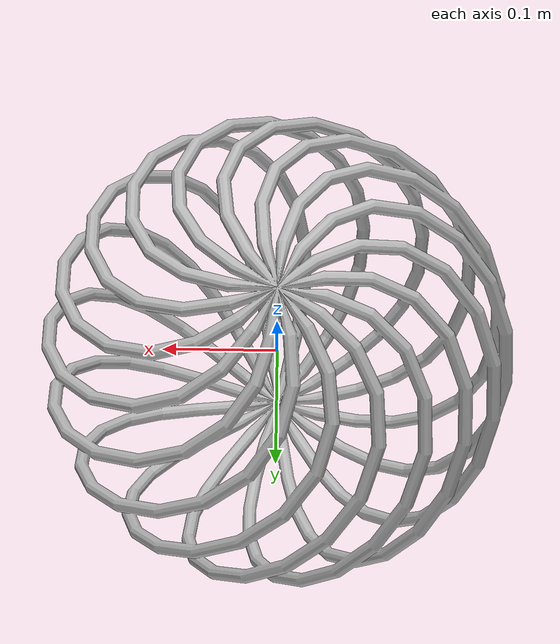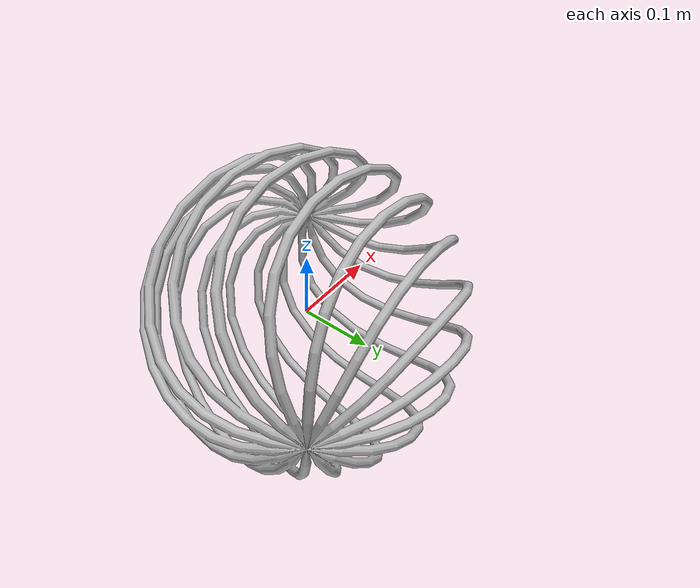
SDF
<?xml version="1.0" ?>
<sdf version="1.5">
  <model name="esfera_personalizada">
    <link name="link">
      <collision name="collision">
        <geometry>
          <mesh>
            <scale>0.2 0.2 0.2</scale>
            <uri>model://esfera_personalizada/meshes/esfera_personalizada.stl</uri>
          </mesh>
        </geometry>
      </collision>
      <visual name="visual">
        <geometry>
          <mesh>
            <scale>0.2 0.2 0.2</scale>
            <uri>model://esfera_personalizada/meshes/esfera_personalizada.dae</uri>
          </mesh>
        </geometry>
      </visual>
    </link>
  </model>
</sdf>
